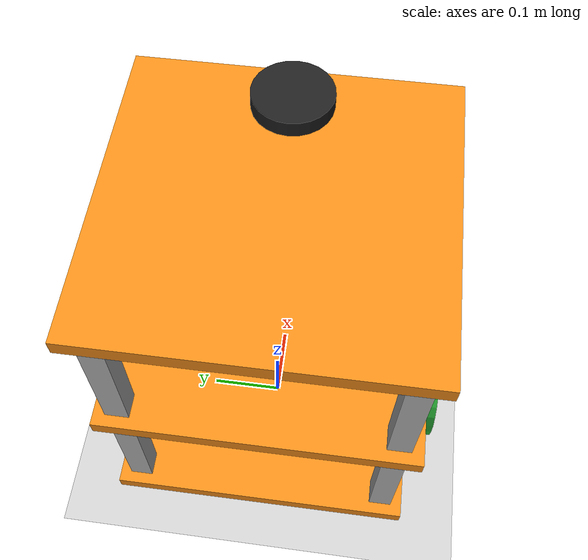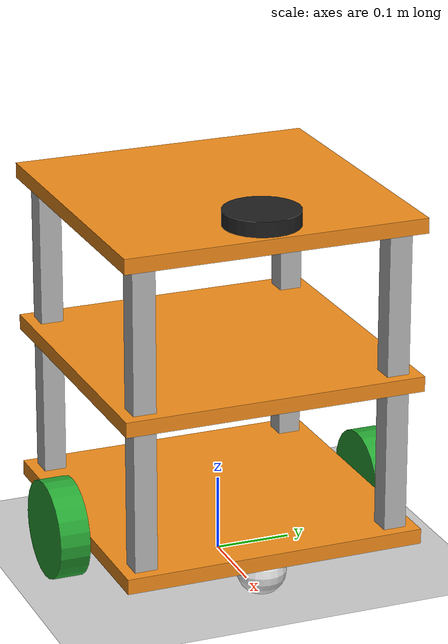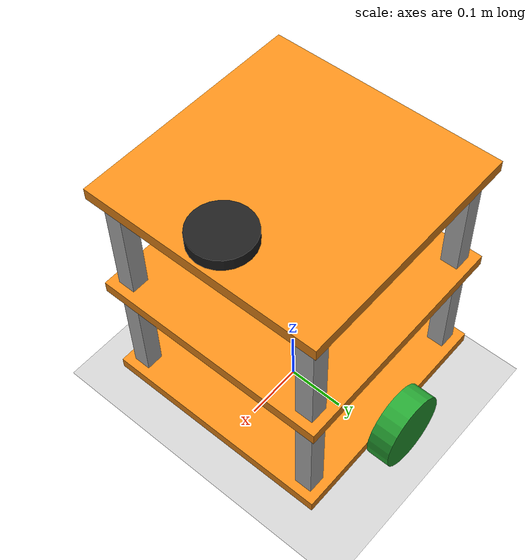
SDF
<sdf version="1.7">
 <world name="default">
  <light name="sun" type="directional">
   <pose>0 0 10 0 -0 0</pose>
   <diffuse>0.8 0.8 0.8 1</diffuse>
   <specular>0.2 0.2 0.2 1</specular>
   <attenuation>
    <range>1000</range>
    <constant>0.9</constant>
    <linear>0.01</linear>
    <quadratic>0.001</quadratic>
   </attenuation>
   <direction>-0.5 0.1 -0.9</direction>
   <spot><inner_angle>0</inner_angle><outer_angle>0</outer_angle><falloff>0</falloff></spot>
  </light>
  <model name="ground_plane">
   <static>1</static>
   <link name="link">
    <collision name="collision">
     <geometry><plane><normal>0 0 1</normal><size>100 100</size></plane></geometry>
     <surface><friction><ode><mu>100</mu><mu2>50</mu2></ode></friction></surface>
    </collision>
    <visual name="visual">
     <cast_shadows>0</cast_shadows>
     <geometry><plane><normal>0 0 1</normal><size>100 100</size></plane></geometry>
     <material>
      <script><uri>file://media/materials/scripts/gazebo.material</uri><name>Gazebo/Grey</name></script>
     </material>
    </visual>
   </link>
  </model>
  <gravity>0 0 -9.8</gravity>
  <magnetic_field>6e-06 2.3e-05 -4.2e-05</magnetic_field>
  <atmosphere type="adiabatic"/>
  <physics type="ode">
   <max_step_size>0.001</max_step_size>
   <real_time_factor>1</real_time_factor>
   <real_time_update_rate>1000</real_time_update_rate>
  </physics>
  <scene><ambient>0.4 0.4 0.4 1</ambient><background>0.7 0.7 0.7 1</background><shadows>1</shadows></scene>
  <audio><device>default</device></audio>
  <spherical_coordinates>
   <surface_model>EARTH_WGS84</surface_model>
   <latitude_deg>0</latitude_deg>
   <longitude_deg>0</longitude_deg>
   <elevation>0</elevation>
   <heading_deg>0</heading_deg>
  </spherical_coordinates>
  <model name="my_bot">
   <link name="base_link">
    <inertial>
     <pose>0.00725 0 0.1725 0 -0 0</pose>
     <mass>2</mass>
     <inertia>
      <ixx>0.0728948</ixx>
      <ixy>0</ixy>
      <ixz>-0.00373375</ixz>
      <iyy>0.0838922</iyy>
      <iyz>0</iyz>
      <izz>0.0142914</izz>
     </inertia>
    </inertial>
    <collision name="base_link_fixed_joint_lump__base_chassis_wheel_collision">
     <geometry><box><size>0.4 0.4 0.02</size></box></geometry>
    </collision>
    <collision name="base_link_fixed_joint_lump__caster_wheel_back_collision_1">
     <pose>-0.15 0 -0.0325 0 -0 0</pose>
     <geometry><sphere><radius>0.0325</radius></sphere></geometry>
    </collision>
    <collision name="base_link_fixed_joint_lump__caster_wheel_front_collision_2">
     <pose>0.15 0 -0.0325 0 -0 0</pose>
     <geometry><sphere><radius>0.0325</radius></sphere></geometry>
    </collision>
    <collision name="base_link_fixed_joint_lump__columnA_collision_3">
     <pose>-0.17 -0.17 0.21 0 -0 0</pose>
     <geometry><box><size>0.03 0.03 0.4</size></box></geometry>
    </collision>
    <collision name="base_link_fixed_joint_lump__columnB_collision_4">
     <pose>0.17 -0.17 0.21 0 -0 0</pose>
     <geometry><box><size>0.03 0.03 0.4</size></box></geometry>
    </collision>
    <collision name="base_link_fixed_joint_lump__columnC_collision_5">
     <pose>-0.17 0.17 0.21 0 -0 0</pose>
     <geometry><box><size>0.03 0.03 0.4</size></box></geometry>
    </collision>
    <collision name="base_link_fixed_joint_lump__columnD_collision_6">
     <pose>0.17 0.17 0.21 0 -0 0</pose>
     <geometry><box><size>0.03 0.03 0.4</size></box></geometry>
    </collision>
    <collision name="base_link_fixed_joint_lump__plateA_collision_7">
     <pose>0 0 0.21 0 -0 0</pose>
     <geometry><box><size>0.4 0.4 0.02</size></box></geometry>
    </collision>
    <collision name="base_link_fixed_joint_lump__Topplate_collision_8">
     <pose>0 0 0.42 0 -0 0</pose>
     <geometry><box><size>0.4 0.4 0.02</size></box></geometry>
    </collision>
    <collision name="base_link_fixed_joint_lump__laser_frame_collision_9">
     <pose>0.145 0 0.43 0 -0 0</pose>
     <geometry><cylinder><length>0.04</length><radius>0.05</radius></cylinder></geometry>
    </collision>
    <visual name="base_link_fixed_joint_lump__base_chassis_wheel_visual">
     <geometry><box><size>0.4 0.4 0.02</size></box></geometry>
     <material>
      <script><name>Gazebo/Orange</name><uri>file://media/materials/scripts/gazebo.material</uri></script>
     </material>
    </visual>
    <visual name="base_link_fixed_joint_lump__caster_wheel_back_visual_1">
     <pose>-0.15 0 -0.0325 0 -0 0</pose>
     <geometry><sphere><radius>0.0325</radius></sphere></geometry>
     <material>
      <script><name>Gazebo/White</name><uri>file://media/materials/scripts/gazebo.material</uri></script>
     </material>
    </visual>
    <visual name="base_link_fixed_joint_lump__caster_wheel_front_visual_2">
     <pose>0.15 0 -0.0325 0 -0 0</pose>
     <geometry><sphere><radius>0.0325</radius></sphere></geometry>
     <material>
      <script><name>Gazebo/White</name><uri>file://media/materials/scripts/gazebo.material</uri></script>
     </material>
    </visual>
    <visual name="base_link_fixed_joint_lump__columnA_visual_3">
     <pose>-0.17 -0.17 0.21 0 -0 0</pose>
     <geometry><box><size>0.03 0.03 0.4</size></box></geometry>
    </visual>
    <visual name="base_link_fixed_joint_lump__columnB_visual_4">
     <pose>0.17 -0.17 0.21 0 -0 0</pose>
     <geometry><box><size>0.03 0.03 0.4</size></box></geometry>
    </visual>
    <visual name="base_link_fixed_joint_lump__columnC_visual_5">
     <pose>-0.17 0.17 0.21 0 -0 0</pose>
     <geometry><box><size>0.03 0.03 0.4</size></box></geometry>
    </visual>
    <visual name="base_link_fixed_joint_lump__columnD_visual_6">
     <pose>0.17 0.17 0.21 0 -0 0</pose>
     <geometry><box><size>0.03 0.03 0.4</size></box></geometry>
    </visual>
    <visual name="base_link_fixed_joint_lump__plateA_visual_7">
     <pose>0 0 0.21 0 -0 0</pose>
     <geometry><box><size>0.4 0.4 0.02</size></box></geometry>
     <material>
      <script><name>Gazebo/Orange</name><uri>file://media/materials/scripts/gazebo.material</uri></script>
     </material>
    </visual>
    <visual name="base_link_fixed_joint_lump__Topplate_visual_8">
     <pose>0 0 0.42 0 -0 0</pose>
     <geometry><box><size>0.4 0.4 0.02</size></box></geometry>
     <material>
      <script><name>Gazebo/Orange</name><uri>file://media/materials/scripts/gazebo.material</uri></script>
     </material>
    </visual>
    <visual name="base_link_fixed_joint_lump__laser_frame_visual_9">
     <pose>0.145 0 0.43 0 -0 0</pose>
     <geometry><cylinder><length>0.04</length><radius>0.05</radius></cylinder></geometry>
     <material>
      <script><name>Gazebo/Black</name><uri>file://media/materials/scripts/gazebo.material</uri></script>
     </material>
    </visual>
    <sensor name="laser" type="ray">
     <visualize>0</visualize>
     <update_rate>10</update_rate>
     <ray>
      <scan>
       <horizontal>
        <samples>360</samples>
        <min_angle>-3.14</min_angle>
        <max_angle>3.14</max_angle>
        <resolution>1</resolution>
       </horizontal>
       <vertical><samples>1</samples><min_angle>0</min_angle><max_angle>0</max_angle></vertical>
      </scan>
      <range><min>0.45</min><max>12</max></range>
     </ray>
     <plugin name="laser_controller" filename="libgazebo_ros_ray_sensor.so">
      <ros><argument>~/out:=scan</argument></ros>
      <output_type>sensor_msgs/LaserScan</output_type>
      <frame_name>laser_frame</frame_name>
     </plugin>
     <pose>0.145 0 0.43 0 -0 0</pose>
    </sensor>
   </link>
   <joint name="left_wheel_joint" type="revolute">
    <pose relative_to="base_link">0 0.22 0 -1.57 0 0</pose>
    <parent>base_link</parent>
    <child>left_wheel</child>
    <axis>
     <xyz>0 0 1</xyz>
     <limit><lower>-1e+16</lower><upper>1e+16</upper></limit>
     <dynamics><spring_reference>0</spring_reference><spring_stiffness>0</spring_stiffness></dynamics>
    </axis>
   </joint>
   <link name="left_wheel">
    <pose relative_to="left_wheel_joint">0 0 0 0 -0 0</pose>
    <inertial>
     <mass>1.95</mass>
     <inertia>
      <ixx>0.00231969</ixx>
      <ixy>0</ixy>
      <ixz>0</ixz>
      <iyy>0.00231969</iyy>
      <iyz>0</iyz>
      <izz>0.00411938</izz>
     </inertia>
    </inertial>
    <collision name="left_wheel_collision">
     <geometry><cylinder><length>0.04</length><radius>0.065</radius></cylinder></geometry>
    </collision>
    <visual name="left_wheel_visual">
     <geometry><cylinder><length>0.04</length><radius>0.065</radius></cylinder></geometry>
     <material>
      <script><name>Gazebo/Green</name><uri>file://media/materials/scripts/gazebo.material</uri></script>
     </material>
    </visual>
   </link>
   <joint name="right_wheel_joint" type="revolute">
    <pose relative_to="base_link">0 -0.22 0 1.57 -0 0</pose>
    <parent>base_link</parent>
    <child>right_wheel</child>
    <axis>
     <xyz>0 0 -1</xyz>
     <limit><lower>-1e+16</lower><upper>1e+16</upper></limit>
     <dynamics><spring_reference>0</spring_reference><spring_stiffness>0</spring_stiffness></dynamics>
    </axis>
   </joint>
   <link name="right_wheel">
    <pose relative_to="right_wheel_joint">0 0 0 0 -0 0</pose>
    <inertial>
     <mass>1.95</mass>
     <inertia>
      <ixx>0.00231969</ixx>
      <ixy>0</ixy>
      <ixz>0</ixz>
      <iyy>0.00231969</iyy>
      <iyz>0</iyz>
      <izz>0.00411938</izz>
     </inertia>
    </inertial>
    <collision name="right_wheel_collision">
     <geometry><cylinder><length>0.04</length><radius>0.065</radius></cylinder></geometry>
    </collision>
    <visual name="right_wheel_visual">
     <geometry><cylinder><length>0.04</length><radius>0.065</radius></cylinder></geometry>
     <material>
      <script><name>Gazebo/Green</name><uri>file://media/materials/scripts/gazebo.material</uri></script>
     </material>
    </visual>
   </link>
   <static>0</static>
   <plugin name="gazebo_ros2_control" filename="libgazebo_ros2_control.so">
    <parameters>/home/enzo/enzo_ws/install/sompoch_robot/share/sompoch_robot/config/my_controllers.yaml</parameters>
    <parameters>/home/enzo/enzo_ws/install/sompoch_robot/share/sompoch_robot/config/gaz_ros2_ctl_use_sim.yaml</parameters>
   </plugin>
   <plugin name="joint_state_publisher" filename="libgazebo_ros_joint_state_publisher.so">
    <update_rate>20</update_rate>
    <joint_name>caster_wheel_back_joint</joint_name>
    <joint_name>caster_wheel_front_joint</joint_name>
   </plugin>
   <pose>-0.004255 0.001016 0.065014 -9e-06 9.3e-05 0.003274</pose>
  </model>
 </world>
</sdf>
